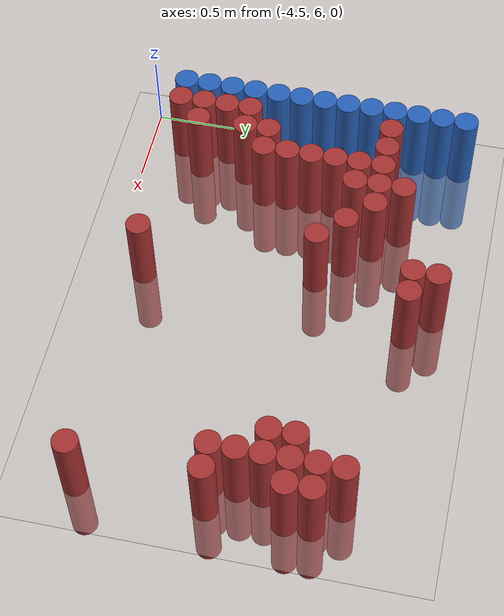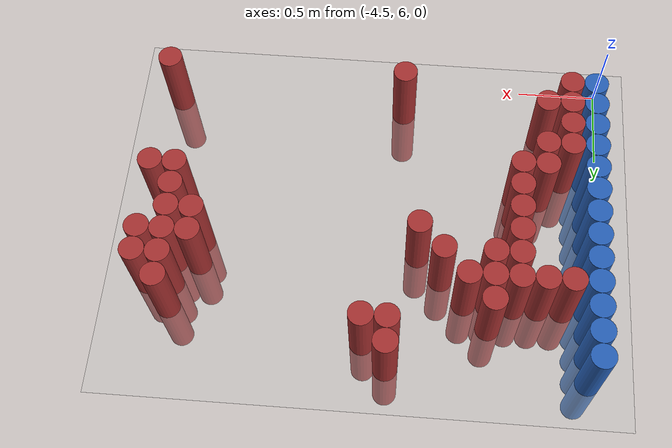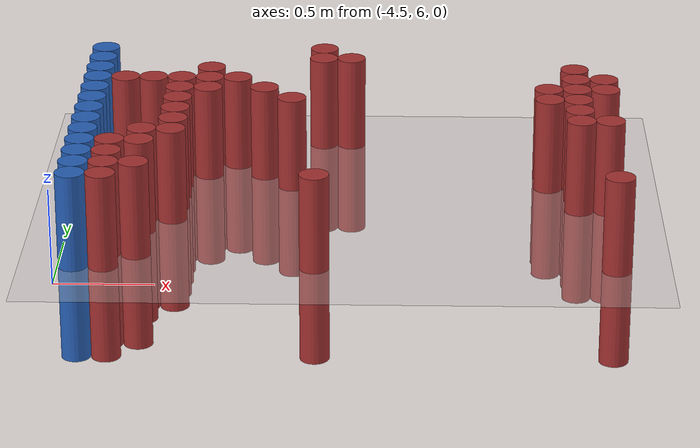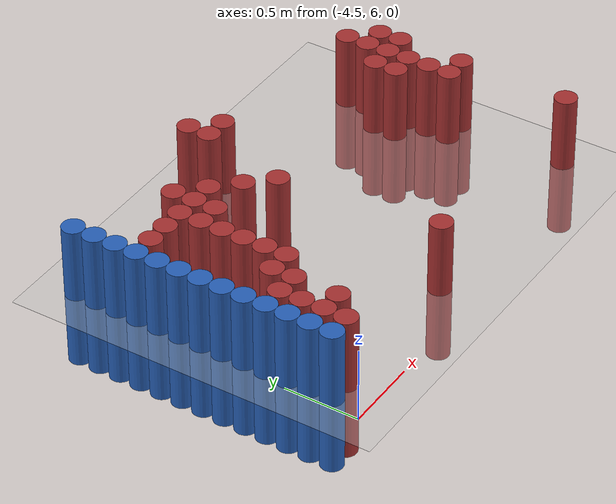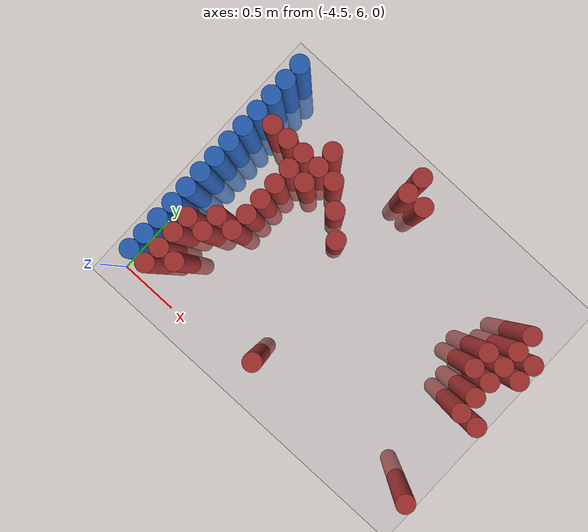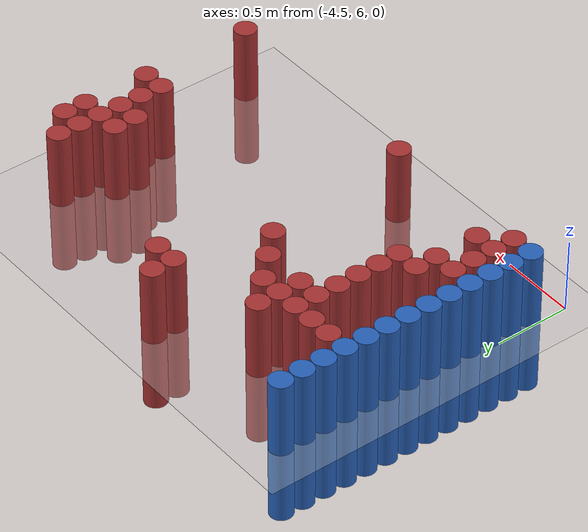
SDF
<sdf version="1.6">
 <world name="default">
  <model name="ground_plane">
   <static>1</static>
   <link name="link">
    <collision name="collision">
     <geometry><plane><normal>0 0 1</normal><size>100 100</size></plane></geometry>
     <surface><friction><ode><mu>100</mu><mu2>50</mu2></ode></friction></surface>
    </collision>
    <visual name="visual">
     <cast_shadows>0</cast_shadows>
     <geometry><plane><normal>0 0 1</normal><size>100 100</size></plane></geometry>
     <material>
      <script><uri>file://media/materials/scripts/gazebo.material</uri><name>Gazebo/Grey</name></script>
     </material>
    </visual>
   </link>
  </model>
  <model name="unit_cylinder_103">
   <static>1</static>
   <pose>-4.425000 6.225000 0.000000 0.000000 0.000000 0.000000</pose>
   <link name="link">
    <inertial>
     <mass>1</mass>
     <inertia><ixx>0.145833</ixx><ixy>0</ixy><ixz>0</ixz><iyy>0.145833</iyy><iyz>0</iyz><izz>0.125</izz></inertia>
    </inertial>
    <collision name="collision">
     <geometry><cylinder><radius>0.075000</radius><length>1</length></cylinder></geometry>
    </collision>
    <visual name="visual">
     <geometry><cylinder><radius>0.075000</radius><length>1</length></cylinder></geometry>
     <material>
      <ambient>0.152000 0.379000 0.720000 1</ambient>
      <diffuse>0.152000 0.379000 0.720000 1</diffuse>
     </material>
     <material>
      <script><name>Gazebo/Grey</name><uri>file://media/materials/scripts/gazebo.material</uri></script>
     </material>
    </visual>
   </link>
  </model>
  <model name="unit_cylinder_104">
   <static>1</static>
   <pose>-4.425000 6.375000 0.000000 0.000000 0.000000 0.000000</pose>
   <link name="link">
    <inertial>
     <mass>1</mass>
     <inertia><ixx>0.145833</ixx><ixy>0</ixy><ixz>0</ixz><iyy>0.145833</iyy><iyz>0</iyz><izz>0.125</izz></inertia>
    </inertial>
    <collision name="collision">
     <geometry><cylinder><radius>0.075000</radius><length>1</length></cylinder></geometry>
    </collision>
    <visual name="visual">
     <geometry><cylinder><radius>0.075000</radius><length>1</length></cylinder></geometry>
     <material>
      <ambient>0.152000 0.379000 0.720000 1</ambient>
      <diffuse>0.152000 0.379000 0.720000 1</diffuse>
     </material>
     <material>
      <script><name>Gazebo/Grey</name><uri>file://media/materials/scripts/gazebo.material</uri></script>
     </material>
    </visual>
   </link>
  </model>
  <model name="unit_cylinder_105">
   <static>1</static>
   <pose>-4.425000 6.525000 0.000000 0.000000 0.000000 0.000000</pose>
   <link name="link">
    <inertial>
     <mass>1</mass>
     <inertia><ixx>0.145833</ixx><ixy>0</ixy><ixz>0</ixz><iyy>0.145833</iyy><iyz>0</iyz><izz>0.125</izz></inertia>
    </inertial>
    <collision name="collision">
     <geometry><cylinder><radius>0.075000</radius><length>1</length></cylinder></geometry>
    </collision>
    <visual name="visual">
     <geometry><cylinder><radius>0.075000</radius><length>1</length></cylinder></geometry>
     <material>
      <ambient>0.152000 0.379000 0.720000 1</ambient>
      <diffuse>0.152000 0.379000 0.720000 1</diffuse>
     </material>
     <material>
      <script><name>Gazebo/Grey</name><uri>file://media/materials/scripts/gazebo.material</uri></script>
     </material>
    </visual>
   </link>
  </model>
  <model name="unit_cylinder_106">
   <static>1</static>
   <pose>-4.425000 6.675000 0.000000 0.000000 0.000000 0.000000</pose>
   <link name="link">
    <inertial>
     <mass>1</mass>
     <inertia><ixx>0.145833</ixx><ixy>0</ixy><ixz>0</ixz><iyy>0.145833</iyy><iyz>0</iyz><izz>0.125</izz></inertia>
    </inertial>
    <collision name="collision">
     <geometry><cylinder><radius>0.075000</radius><length>1</length></cylinder></geometry>
    </collision>
    <visual name="visual">
     <geometry><cylinder><radius>0.075000</radius><length>1</length></cylinder></geometry>
     <material>
      <ambient>0.152000 0.379000 0.720000 1</ambient>
      <diffuse>0.152000 0.379000 0.720000 1</diffuse>
     </material>
     <material>
      <script><name>Gazebo/Grey</name><uri>file://media/materials/scripts/gazebo.material</uri></script>
     </material>
    </visual>
   </link>
  </model>
  <model name="unit_cylinder_107">
   <static>1</static>
   <pose>-4.425000 6.825000 0.000000 0.000000 0.000000 0.000000</pose>
   <link name="link">
    <inertial>
     <mass>1</mass>
     <inertia><ixx>0.145833</ixx><ixy>0</ixy><ixz>0</ixz><iyy>0.145833</iyy><iyz>0</iyz><izz>0.125</izz></inertia>
    </inertial>
    <collision name="collision">
     <geometry><cylinder><radius>0.075000</radius><length>1</length></cylinder></geometry>
    </collision>
    <visual name="visual">
     <geometry><cylinder><radius>0.075000</radius><length>1</length></cylinder></geometry>
     <material>
      <ambient>0.152000 0.379000 0.720000 1</ambient>
      <diffuse>0.152000 0.379000 0.720000 1</diffuse>
     </material>
     <material>
      <script><name>Gazebo/Grey</name><uri>file://media/materials/scripts/gazebo.material</uri></script>
     </material>
    </visual>
   </link>
  </model>
  <model name="unit_cylinder_108">
   <static>1</static>
   <pose>-4.425000 6.975000 0.000000 0.000000 0.000000 0.000000</pose>
   <link name="link">
    <inertial>
     <mass>1</mass>
     <inertia><ixx>0.145833</ixx><ixy>0</ixy><ixz>0</ixz><iyy>0.145833</iyy><iyz>0</iyz><izz>0.125</izz></inertia>
    </inertial>
    <collision name="collision">
     <geometry><cylinder><radius>0.075000</radius><length>1</length></cylinder></geometry>
    </collision>
    <visual name="visual">
     <geometry><cylinder><radius>0.075000</radius><length>1</length></cylinder></geometry>
     <material>
      <ambient>0.152000 0.379000 0.720000 1</ambient>
      <diffuse>0.152000 0.379000 0.720000 1</diffuse>
     </material>
     <material>
      <script><name>Gazebo/Grey</name><uri>file://media/materials/scripts/gazebo.material</uri></script>
     </material>
    </visual>
   </link>
  </model>
  <model name="unit_cylinder_109">
   <static>1</static>
   <pose>-4.425000 7.125000 0.000000 0.000000 0.000000 0.000000</pose>
   <link name="link">
    <inertial>
     <mass>1</mass>
     <inertia><ixx>0.145833</ixx><ixy>0</ixy><ixz>0</ixz><iyy>0.145833</iyy><iyz>0</iyz><izz>0.125</izz></inertia>
    </inertial>
    <collision name="collision">
     <geometry><cylinder><radius>0.075000</radius><length>1</length></cylinder></geometry>
    </collision>
    <visual name="visual">
     <geometry><cylinder><radius>0.075000</radius><length>1</length></cylinder></geometry>
     <material>
      <ambient>0.152000 0.379000 0.720000 1</ambient>
      <diffuse>0.152000 0.379000 0.720000 1</diffuse>
     </material>
     <material>
      <script><name>Gazebo/Grey</name><uri>file://media/materials/scripts/gazebo.material</uri></script>
     </material>
    </visual>
   </link>
  </model>
  <model name="unit_cylinder_110">
   <static>1</static>
   <pose>-4.425000 7.275000 0.000000 0.000000 0.000000 0.000000</pose>
   <link name="link">
    <inertial>
     <mass>1</mass>
     <inertia><ixx>0.145833</ixx><ixy>0</ixy><ixz>0</ixz><iyy>0.145833</iyy><iyz>0</iyz><izz>0.125</izz></inertia>
    </inertial>
    <collision name="collision">
     <geometry><cylinder><radius>0.075000</radius><length>1</length></cylinder></geometry>
    </collision>
    <visual name="visual">
     <geometry><cylinder><radius>0.075000</radius><length>1</length></cylinder></geometry>
     <material>
      <ambient>0.152000 0.379000 0.720000 1</ambient>
      <diffuse>0.152000 0.379000 0.720000 1</diffuse>
     </material>
     <material>
      <script><name>Gazebo/Grey</name><uri>file://media/materials/scripts/gazebo.material</uri></script>
     </material>
    </visual>
   </link>
  </model>
  <model name="unit_cylinder_111">
   <static>1</static>
   <pose>-4.425000 7.425000 0.000000 0.000000 0.000000 0.000000</pose>
   <link name="link">
    <inertial>
     <mass>1</mass>
     <inertia><ixx>0.145833</ixx><ixy>0</ixy><ixz>0</ixz><iyy>0.145833</iyy><iyz>0</iyz><izz>0.125</izz></inertia>
    </inertial>
    <collision name="collision">
     <geometry><cylinder><radius>0.075000</radius><length>1</length></cylinder></geometry>
    </collision>
    <visual name="visual">
     <geometry><cylinder><radius>0.075000</radius><length>1</length></cylinder></geometry>
     <material>
      <ambient>0.152000 0.379000 0.720000 1</ambient>
      <diffuse>0.152000 0.379000 0.720000 1</diffuse>
     </material>
     <material>
      <script><name>Gazebo/Grey</name><uri>file://media/materials/scripts/gazebo.material</uri></script>
     </material>
    </visual>
   </link>
  </model>
  <model name="unit_cylinder_112">
   <static>1</static>
   <pose>-4.425000 7.575000 0.000000 0.000000 0.000000 0.000000</pose>
   <link name="link">
    <inertial>
     <mass>1</mass>
     <inertia><ixx>0.145833</ixx><ixy>0</ixy><ixz>0</ixz><iyy>0.145833</iyy><iyz>0</iyz><izz>0.125</izz></inertia>
    </inertial>
    <collision name="collision">
     <geometry><cylinder><radius>0.075000</radius><length>1</length></cylinder></geometry>
    </collision>
    <visual name="visual">
     <geometry><cylinder><radius>0.075000</radius><length>1</length></cylinder></geometry>
     <material>
      <ambient>0.152000 0.379000 0.720000 1</ambient>
      <diffuse>0.152000 0.379000 0.720000 1</diffuse>
     </material>
     <material>
      <script><name>Gazebo/Grey</name><uri>file://media/materials/scripts/gazebo.material</uri></script>
     </material>
    </visual>
   </link>
  </model>
  <model name="unit_cylinder_113">
   <static>1</static>
   <pose>-4.425000 7.725000 0.000000 0.000000 0.000000 0.000000</pose>
   <link name="link">
    <inertial>
     <mass>1</mass>
     <inertia><ixx>0.145833</ixx><ixy>0</ixy><ixz>0</ixz><iyy>0.145833</iyy><iyz>0</iyz><izz>0.125</izz></inertia>
    </inertial>
    <collision name="collision">
     <geometry><cylinder><radius>0.075000</radius><length>1</length></cylinder></geometry>
    </collision>
    <visual name="visual">
     <geometry><cylinder><radius>0.075000</radius><length>1</length></cylinder></geometry>
     <material>
      <ambient>0.152000 0.379000 0.720000 1</ambient>
      <diffuse>0.152000 0.379000 0.720000 1</diffuse>
     </material>
     <material>
      <script><name>Gazebo/Grey</name><uri>file://media/materials/scripts/gazebo.material</uri></script>
     </material>
    </visual>
   </link>
  </model>
  <model name="unit_cylinder_114">
   <static>1</static>
   <pose>-4.425000 7.875000 0.000000 0.000000 0.000000 0.000000</pose>
   <link name="link">
    <inertial>
     <mass>1</mass>
     <inertia><ixx>0.145833</ixx><ixy>0</ixy><ixz>0</ixz><iyy>0.145833</iyy><iyz>0</iyz><izz>0.125</izz></inertia>
    </inertial>
    <collision name="collision">
     <geometry><cylinder><radius>0.075000</radius><length>1</length></cylinder></geometry>
    </collision>
    <visual name="visual">
     <geometry><cylinder><radius>0.075000</radius><length>1</length></cylinder></geometry>
     <material>
      <ambient>0.152000 0.379000 0.720000 1</ambient>
      <diffuse>0.152000 0.379000 0.720000 1</diffuse>
     </material>
     <material>
      <script><name>Gazebo/Grey</name><uri>file://media/materials/scripts/gazebo.material</uri></script>
     </material>
    </visual>
   </link>
  </model>
  <model name="unit_cylinder_115">
   <static>1</static>
   <pose>-4.425000 8.025000 0.000000 0.000000 0.000000 0.000000</pose>
   <link name="link">
    <inertial>
     <mass>1</mass>
     <inertia><ixx>0.145833</ixx><ixy>0</ixy><ixz>0</ixz><iyy>0.145833</iyy><iyz>0</iyz><izz>0.125</izz></inertia>
    </inertial>
    <collision name="collision">
     <geometry><cylinder><radius>0.075000</radius><length>1</length></cylinder></geometry>
    </collision>
    <visual name="visual">
     <geometry><cylinder><radius>0.075000</radius><length>1</length></cylinder></geometry>
     <material>
      <ambient>0.152000 0.379000 0.720000 1</ambient>
      <diffuse>0.152000 0.379000 0.720000 1</diffuse>
     </material>
     <material>
      <script><name>Gazebo/Grey</name><uri>file://media/materials/scripts/gazebo.material</uri></script>
     </material>
    </visual>
   </link>
  </model>
  <model name="unit_cylinder_131">
   <static>1</static>
   <pose>-4.275000 6.225000 0.000000 0.000000 0.000000 0.000000</pose>
   <link name="link">
    <inertial>
     <mass>1</mass>
     <inertia><ixx>0.145833</ixx><ixy>0</ixy><ixz>0</ixz><iyy>0.145833</iyy><iyz>0</iyz><izz>0.125</izz></inertia>
    </inertial>
    <collision name="collision">
     <geometry><cylinder><radius>0.075000</radius><length>1</length></cylinder></geometry>
    </collision>
    <visual name="visual">
     <geometry><cylinder><radius>0.075000</radius><length>1</length></cylinder></geometry>
     <material>
      <ambient>0.648000 0.192000 0.192000 1</ambient>
      <diffuse>0.648000 0.192000 0.192000 1</diffuse>
     </material>
     <material>
      <script><name>Gazebo/Grey</name><uri>file://media/materials/scripts/gazebo.material</uri></script>
     </material>
    </visual>
   </link>
  </model>
  <model name="unit_cylinder_132">
   <static>1</static>
   <pose>-4.275000 6.375000 0.000000 0.000000 0.000000 0.000000</pose>
   <link name="link">
    <inertial>
     <mass>1</mass>
     <inertia><ixx>0.145833</ixx><ixy>0</ixy><ixz>0</ixz><iyy>0.145833</iyy><iyz>0</iyz><izz>0.125</izz></inertia>
    </inertial>
    <collision name="collision">
     <geometry><cylinder><radius>0.075000</radius><length>1</length></cylinder></geometry>
    </collision>
    <visual name="visual">
     <geometry><cylinder><radius>0.075000</radius><length>1</length></cylinder></geometry>
     <material>
      <ambient>0.648000 0.192000 0.192000 1</ambient>
      <diffuse>0.648000 0.192000 0.192000 1</diffuse>
     </material>
     <material>
      <script><name>Gazebo/Grey</name><uri>file://media/materials/scripts/gazebo.material</uri></script>
     </material>
    </visual>
   </link>
  </model>
  <model name="unit_cylinder_133">
   <static>1</static>
   <pose>-4.275000 6.525000 0.000000 0.000000 0.000000 0.000000</pose>
   <link name="link">
    <inertial>
     <mass>1</mass>
     <inertia><ixx>0.145833</ixx><ixy>0</ixy><ixz>0</ixz><iyy>0.145833</iyy><iyz>0</iyz><izz>0.125</izz></inertia>
    </inertial>
    <collision name="collision">
     <geometry><cylinder><radius>0.075000</radius><length>1</length></cylinder></geometry>
    </collision>
    <visual name="visual">
     <geometry><cylinder><radius>0.075000</radius><length>1</length></cylinder></geometry>
     <material>
      <ambient>0.648000 0.192000 0.192000 1</ambient>
      <diffuse>0.648000 0.192000 0.192000 1</diffuse>
     </material>
     <material>
      <script><name>Gazebo/Grey</name><uri>file://media/materials/scripts/gazebo.material</uri></script>
     </material>
    </visual>
   </link>
  </model>
  <model name="unit_cylinder_134">
   <static>1</static>
   <pose>-4.275000 6.675000 0.000000 0.000000 0.000000 0.000000</pose>
   <link name="link">
    <inertial>
     <mass>1</mass>
     <inertia><ixx>0.145833</ixx><ixy>0</ixy><ixz>0</ixz><iyy>0.145833</iyy><iyz>0</iyz><izz>0.125</izz></inertia>
    </inertial>
    <collision name="collision">
     <geometry><cylinder><radius>0.075000</radius><length>1</length></cylinder></geometry>
    </collision>
    <visual name="visual">
     <geometry><cylinder><radius>0.075000</radius><length>1</length></cylinder></geometry>
     <material>
      <ambient>0.648000 0.192000 0.192000 1</ambient>
      <diffuse>0.648000 0.192000 0.192000 1</diffuse>
     </material>
     <material>
      <script><name>Gazebo/Grey</name><uri>file://media/materials/scripts/gazebo.material</uri></script>
     </material>
    </visual>
   </link>
  </model>
  <model name="unit_cylinder_135">
   <static>1</static>
   <pose>-4.275000 7.575000 0.000000 0.000000 0.000000 0.000000</pose>
   <link name="link">
    <inertial>
     <mass>1</mass>
     <inertia><ixx>0.145833</ixx><ixy>0</ixy><ixz>0</ixz><iyy>0.145833</iyy><iyz>0</iyz><izz>0.125</izz></inertia>
    </inertial>
    <collision name="collision">
     <geometry><cylinder><radius>0.075000</radius><length>1</length></cylinder></geometry>
    </collision>
    <visual name="visual">
     <geometry><cylinder><radius>0.075000</radius><length>1</length></cylinder></geometry>
     <material>
      <ambient>0.648000 0.192000 0.192000 1</ambient>
      <diffuse>0.648000 0.192000 0.192000 1</diffuse>
     </material>
     <material>
      <script><name>Gazebo/Grey</name><uri>file://media/materials/scripts/gazebo.material</uri></script>
     </material>
    </visual>
   </link>
  </model>
  <model name="unit_cylinder_138">
   <static>1</static>
   <pose>-4.125000 6.375000 0.000000 0.000000 0.000000 0.000000</pose>
   <link name="link">
    <inertial>
     <mass>1</mass>
     <inertia><ixx>0.145833</ixx><ixy>0</ixy><ixz>0</ixz><iyy>0.145833</iyy><iyz>0</iyz><izz>0.125</izz></inertia>
    </inertial>
    <collision name="collision">
     <geometry><cylinder><radius>0.075000</radius><length>1</length></cylinder></geometry>
    </collision>
    <visual name="visual">
     <geometry><cylinder><radius>0.075000</radius><length>1</length></cylinder></geometry>
     <material>
      <ambient>0.648000 0.192000 0.192000 1</ambient>
      <diffuse>0.648000 0.192000 0.192000 1</diffuse>
     </material>
     <material>
      <script><name>Gazebo/Grey</name><uri>file://media/materials/scripts/gazebo.material</uri></script>
     </material>
    </visual>
   </link>
  </model>
  <model name="unit_cylinder_139">
   <static>1</static>
   <pose>-4.125000 6.675000 0.000000 0.000000 0.000000 0.000000</pose>
   <link name="link">
    <inertial>
     <mass>1</mass>
     <inertia><ixx>0.145833</ixx><ixy>0</ixy><ixz>0</ixz><iyy>0.145833</iyy><iyz>0</iyz><izz>0.125</izz></inertia>
    </inertial>
    <collision name="collision">
     <geometry><cylinder><radius>0.075000</radius><length>1</length></cylinder></geometry>
    </collision>
    <visual name="visual">
     <geometry><cylinder><radius>0.075000</radius><length>1</length></cylinder></geometry>
     <material>
      <ambient>0.648000 0.192000 0.192000 1</ambient>
      <diffuse>0.648000 0.192000 0.192000 1</diffuse>
     </material>
     <material>
      <script><name>Gazebo/Grey</name><uri>file://media/materials/scripts/gazebo.material</uri></script>
     </material>
    </visual>
   </link>
  </model>
  <model name="unit_cylinder_140">
   <static>1</static>
   <pose>-4.125000 6.825000 0.000000 0.000000 0.000000 0.000000</pose>
   <link name="link">
    <inertial>
     <mass>1</mass>
     <inertia><ixx>0.145833</ixx><ixy>0</ixy><ixz>0</ixz><iyy>0.145833</iyy><iyz>0</iyz><izz>0.125</izz></inertia>
    </inertial>
    <collision name="collision">
     <geometry><cylinder><radius>0.075000</radius><length>1</length></cylinder></geometry>
    </collision>
    <visual name="visual">
     <geometry><cylinder><radius>0.075000</radius><length>1</length></cylinder></geometry>
     <material>
      <ambient>0.648000 0.192000 0.192000 1</ambient>
      <diffuse>0.648000 0.192000 0.192000 1</diffuse>
     </material>
     <material>
      <script><name>Gazebo/Grey</name><uri>file://media/materials/scripts/gazebo.material</uri></script>
     </material>
    </visual>
   </link>
  </model>
  <model name="unit_cylinder_141">
   <static>1</static>
   <pose>-4.125000 7.575000 0.000000 0.000000 0.000000 0.000000</pose>
   <link name="link">
    <inertial>
     <mass>1</mass>
     <inertia><ixx>0.145833</ixx><ixy>0</ixy><ixz>0</ixz><iyy>0.145833</iyy><iyz>0</iyz><izz>0.125</izz></inertia>
    </inertial>
    <collision name="collision">
     <geometry><cylinder><radius>0.075000</radius><length>1</length></cylinder></geometry>
    </collision>
    <visual name="visual">
     <geometry><cylinder><radius>0.075000</radius><length>1</length></cylinder></geometry>
     <material>
      <ambient>0.648000 0.192000 0.192000 1</ambient>
      <diffuse>0.648000 0.192000 0.192000 1</diffuse>
     </material>
     <material>
      <script><name>Gazebo/Grey</name><uri>file://media/materials/scripts/gazebo.material</uri></script>
     </material>
    </visual>
   </link>
  </model>
  <model name="unit_cylinder_145">
   <static>1</static>
   <pose>-3.975000 6.825000 0.000000 0.000000 0.000000 0.000000</pose>
   <link name="link">
    <inertial>
     <mass>1</mass>
     <inertia><ixx>0.145833</ixx><ixy>0</ixy><ixz>0</ixz><iyy>0.145833</iyy><iyz>0</iyz><izz>0.125</izz></inertia>
    </inertial>
    <collision name="collision">
     <geometry><cylinder><radius>0.075000</radius><length>1</length></cylinder></geometry>
    </collision>
    <visual name="visual">
     <geometry><cylinder><radius>0.075000</radius><length>1</length></cylinder></geometry>
     <material>
      <ambient>0.648000 0.192000 0.192000 1</ambient>
      <diffuse>0.648000 0.192000 0.192000 1</diffuse>
     </material>
     <material>
      <script><name>Gazebo/Grey</name><uri>file://media/materials/scripts/gazebo.material</uri></script>
     </material>
    </visual>
   </link>
  </model>
  <model name="unit_cylinder_146">
   <static>1</static>
   <pose>-3.975000 6.975000 0.000000 0.000000 0.000000 0.000000</pose>
   <link name="link">
    <inertial>
     <mass>1</mass>
     <inertia><ixx>0.145833</ixx><ixy>0</ixy><ixz>0</ixz><iyy>0.145833</iyy><iyz>0</iyz><izz>0.125</izz></inertia>
    </inertial>
    <collision name="collision">
     <geometry><cylinder><radius>0.075000</radius><length>1</length></cylinder></geometry>
    </collision>
    <visual name="visual">
     <geometry><cylinder><radius>0.075000</radius><length>1</length></cylinder></geometry>
     <material>
      <ambient>0.648000 0.192000 0.192000 1</ambient>
      <diffuse>0.648000 0.192000 0.192000 1</diffuse>
     </material>
     <material>
      <script><name>Gazebo/Grey</name><uri>file://media/materials/scripts/gazebo.material</uri></script>
     </material>
    </visual>
   </link>
  </model>
  <model name="unit_cylinder_147">
   <static>1</static>
   <pose>-3.975000 7.125000 0.000000 0.000000 0.000000 0.000000</pose>
   <link name="link">
    <inertial>
     <mass>1</mass>
     <inertia><ixx>0.145833</ixx><ixy>0</ixy><ixz>0</ixz><iyy>0.145833</iyy><iyz>0</iyz><izz>0.125</izz></inertia>
    </inertial>
    <collision name="collision">
     <geometry><cylinder><radius>0.075000</radius><length>1</length></cylinder></geometry>
    </collision>
    <visual name="visual">
     <geometry><cylinder><radius>0.075000</radius><length>1</length></cylinder></geometry>
     <material>
      <ambient>0.648000 0.192000 0.192000 1</ambient>
      <diffuse>0.648000 0.192000 0.192000 1</diffuse>
     </material>
     <material>
      <script><name>Gazebo/Grey</name><uri>file://media/materials/scripts/gazebo.material</uri></script>
     </material>
    </visual>
   </link>
  </model>
  <model name="unit_cylinder_148">
   <static>1</static>
   <pose>-3.975000 7.275000 0.000000 0.000000 0.000000 0.000000</pose>
   <link name="link">
    <inertial>
     <mass>1</mass>
     <inertia><ixx>0.145833</ixx><ixy>0</ixy><ixz>0</ixz><iyy>0.145833</iyy><iyz>0</iyz><izz>0.125</izz></inertia>
    </inertial>
    <collision name="collision">
     <geometry><cylinder><radius>0.075000</radius><length>1</length></cylinder></geometry>
    </collision>
    <visual name="visual">
     <geometry><cylinder><radius>0.075000</radius><length>1</length></cylinder></geometry>
     <material>
      <ambient>0.648000 0.192000 0.192000 1</ambient>
      <diffuse>0.648000 0.192000 0.192000 1</diffuse>
     </material>
     <material>
      <script><name>Gazebo/Grey</name><uri>file://media/materials/scripts/gazebo.material</uri></script>
     </material>
    </visual>
   </link>
  </model>
  <model name="unit_cylinder_149">
   <static>1</static>
   <pose>-3.975000 7.425000 0.000000 0.000000 0.000000 0.000000</pose>
   <link name="link">
    <inertial>
     <mass>1</mass>
     <inertia><ixx>0.145833</ixx><ixy>0</ixy><ixz>0</ixz><iyy>0.145833</iyy><iyz>0</iyz><izz>0.125</izz></inertia>
    </inertial>
    <collision name="collision">
     <geometry><cylinder><radius>0.075000</radius><length>1</length></cylinder></geometry>
    </collision>
    <visual name="visual">
     <geometry><cylinder><radius>0.075000</radius><length>1</length></cylinder></geometry>
     <material>
      <ambient>0.648000 0.192000 0.192000 1</ambient>
      <diffuse>0.648000 0.192000 0.192000 1</diffuse>
     </material>
     <material>
      <script><name>Gazebo/Grey</name><uri>file://media/materials/scripts/gazebo.material</uri></script>
     </material>
    </visual>
   </link>
  </model>
  <model name="unit_cylinder_150">
   <static>1</static>
   <pose>-3.975000 7.575000 0.000000 0.000000 0.000000 0.000000</pose>
   <link name="link">
    <inertial>
     <mass>1</mass>
     <inertia><ixx>0.145833</ixx><ixy>0</ixy><ixz>0</ixz><iyy>0.145833</iyy><iyz>0</iyz><izz>0.125</izz></inertia>
    </inertial>
    <collision name="collision">
     <geometry><cylinder><radius>0.075000</radius><length>1</length></cylinder></geometry>
    </collision>
    <visual name="visual">
     <geometry><cylinder><radius>0.075000</radius><length>1</length></cylinder></geometry>
     <material>
      <ambient>0.648000 0.192000 0.192000 1</ambient>
      <diffuse>0.648000 0.192000 0.192000 1</diffuse>
     </material>
     <material>
      <script><name>Gazebo/Grey</name><uri>file://media/materials/scripts/gazebo.material</uri></script>
     </material>
    </visual>
   </link>
  </model>
  <model name="unit_cylinder_159">
   <static>1</static>
   <pose>-3.825000 7.425000 0.000000 0.000000 0.000000 0.000000</pose>
   <link name="link">
    <inertial>
     <mass>1</mass>
     <inertia><ixx>0.145833</ixx><ixy>0</ixy><ixz>0</ixz><iyy>0.145833</iyy><iyz>0</iyz><izz>0.125</izz></inertia>
    </inertial>
    <collision name="collision">
     <geometry><cylinder><radius>0.075000</radius><length>1</length></cylinder></geometry>
    </collision>
    <visual name="visual">
     <geometry><cylinder><radius>0.075000</radius><length>1</length></cylinder></geometry>
     <material>
      <ambient>0.648000 0.192000 0.192000 1</ambient>
      <diffuse>0.648000 0.192000 0.192000 1</diffuse>
     </material>
     <material>
      <script><name>Gazebo/Grey</name><uri>file://media/materials/scripts/gazebo.material</uri></script>
     </material>
    </visual>
   </link>
  </model>
  <model name="unit_cylinder_160">
   <static>1</static>
   <pose>-3.825000 7.575000 0.000000 0.000000 0.000000 0.000000</pose>
   <link name="link">
    <inertial>
     <mass>1</mass>
     <inertia><ixx>0.145833</ixx><ixy>0</ixy><ixz>0</ixz><iyy>0.145833</iyy><iyz>0</iyz><izz>0.125</izz></inertia>
    </inertial>
    <collision name="collision">
     <geometry><cylinder><radius>0.075000</radius><length>1</length></cylinder></geometry>
    </collision>
    <visual name="visual">
     <geometry><cylinder><radius>0.075000</radius><length>1</length></cylinder></geometry>
     <material>
      <ambient>0.648000 0.192000 0.192000 1</ambient>
      <diffuse>0.648000 0.192000 0.192000 1</diffuse>
     </material>
     <material>
      <script><name>Gazebo/Grey</name><uri>file://media/materials/scripts/gazebo.material</uri></script>
     </material>
    </visual>
   </link>
  </model>
  <model name="unit_cylinder_161">
   <static>1</static>
   <pose>-3.825000 7.725000 0.000000 0.000000 0.000000 0.000000</pose>
   <link name="link">
    <inertial>
     <mass>1</mass>
     <inertia><ixx>0.145833</ixx><ixy>0</ixy><ixz>0</ixz><iyy>0.145833</iyy><iyz>0</iyz><izz>0.125</izz></inertia>
    </inertial>
    <collision name="collision">
     <geometry><cylinder><radius>0.075000</radius><length>1</length></cylinder></geometry>
    </collision>
    <visual name="visual">
     <geometry><cylinder><radius>0.075000</radius><length>1</length></cylinder></geometry>
     <material>
      <ambient>0.648000 0.192000 0.192000 1</ambient>
      <diffuse>0.648000 0.192000 0.192000 1</diffuse>
     </material>
     <material>
      <script><name>Gazebo/Grey</name><uri>file://media/materials/scripts/gazebo.material</uri></script>
     </material>
    </visual>
   </link>
  </model>
  <model name="unit_cylinder_170">
   <static>1</static>
   <pose>-3.675000 7.575000 0.000000 0.000000 0.000000 0.000000</pose>
   <link name="link">
    <inertial>
     <mass>1</mass>
     <inertia><ixx>0.145833</ixx><ixy>0</ixy><ixz>0</ixz><iyy>0.145833</iyy><iyz>0</iyz><izz>0.125</izz></inertia>
    </inertial>
    <collision name="collision">
     <geometry><cylinder><radius>0.075000</radius><length>1</length></cylinder></geometry>
    </collision>
    <visual name="visual">
     <geometry><cylinder><radius>0.075000</radius><length>1</length></cylinder></geometry>
     <material>
      <ambient>0.648000 0.192000 0.192000 1</ambient>
      <diffuse>0.648000 0.192000 0.192000 1</diffuse>
     </material>
     <material>
      <script><name>Gazebo/Grey</name><uri>file://media/materials/scripts/gazebo.material</uri></script>
     </material>
    </visual>
   </link>
  </model>
  <model name="unit_cylinder_175">
   <static>1</static>
   <pose>-3.525000 7.425000 0.000000 0.000000 0.000000 0.000000</pose>
   <link name="link">
    <inertial>
     <mass>1</mass>
     <inertia><ixx>0.145833</ixx><ixy>0</ixy><ixz>0</ixz><iyy>0.145833</iyy><iyz>0</iyz><izz>0.125</izz></inertia>
    </inertial>
    <collision name="collision">
     <geometry><cylinder><radius>0.075000</radius><length>1</length></cylinder></geometry>
    </collision>
    <visual name="visual">
     <geometry><cylinder><radius>0.075000</radius><length>1</length></cylinder></geometry>
     <material>
      <ambient>0.648000 0.192000 0.192000 1</ambient>
      <diffuse>0.648000 0.192000 0.192000 1</diffuse>
     </material>
     <material>
      <script><name>Gazebo/Grey</name><uri>file://media/materials/scripts/gazebo.material</uri></script>
     </material>
    </visual>
   </link>
  </model>
  <model name="unit_cylinder_179">
   <static>1</static>
   <pose>-3.375000 7.275000 0.000000 0.000000 0.000000 0.000000</pose>
   <link name="link">
    <inertial>
     <mass>1</mass>
     <inertia><ixx>0.145833</ixx><ixy>0</ixy><ixz>0</ixz><iyy>0.145833</iyy><iyz>0</iyz><izz>0.125</izz></inertia>
    </inertial>
    <collision name="collision">
     <geometry><cylinder><radius>0.075000</radius><length>1</length></cylinder></geometry>
    </collision>
    <visual name="visual">
     <geometry><cylinder><radius>0.075000</radius><length>1</length></cylinder></geometry>
     <material>
      <ambient>0.648000 0.192000 0.192000 1</ambient>
      <diffuse>0.648000 0.192000 0.192000 1</diffuse>
     </material>
     <material>
      <script><name>Gazebo/Grey</name><uri>file://media/materials/scripts/gazebo.material</uri></script>
     </material>
    </visual>
   </link>
  </model>
  <model name="unit_cylinder_184">
   <static>1</static>
   <pose>-3.225000 6.225000 0.000000 0.000000 0.000000 0.000000</pose>
   <link name="link">
    <inertial>
     <mass>1</mass>
     <inertia><ixx>0.145833</ixx><ixy>0</ixy><ixz>0</ixz><iyy>0.145833</iyy><iyz>0</iyz><izz>0.125</izz></inertia>
    </inertial>
    <collision name="collision">
     <geometry><cylinder><radius>0.075000</radius><length>1</length></cylinder></geometry>
    </collision>
    <visual name="visual">
     <geometry><cylinder><radius>0.075000</radius><length>1</length></cylinder></geometry>
     <material>
      <ambient>0.648000 0.192000 0.192000 1</ambient>
      <diffuse>0.648000 0.192000 0.192000 1</diffuse>
     </material>
     <material>
      <script><name>Gazebo/Grey</name><uri>file://media/materials/scripts/gazebo.material</uri></script>
     </material>
    </visual>
   </link>
  </model>
  <model name="unit_cylinder_185">
   <static>1</static>
   <pose>-3.225000 7.875000 0.000000 0.000000 0.000000 0.000000</pose>
   <link name="link">
    <inertial>
     <mass>1</mass>
     <inertia><ixx>0.145833</ixx><ixy>0</ixy><ixz>0</ixz><iyy>0.145833</iyy><iyz>0</iyz><izz>0.125</izz></inertia>
    </inertial>
    <collision name="collision">
     <geometry><cylinder><radius>0.075000</radius><length>1</length></cylinder></geometry>
    </collision>
    <visual name="visual">
     <geometry><cylinder><radius>0.075000</radius><length>1</length></cylinder></geometry>
     <material>
      <ambient>0.648000 0.192000 0.192000 1</ambient>
      <diffuse>0.648000 0.192000 0.192000 1</diffuse>
     </material>
     <material>
      <script><name>Gazebo/Grey</name><uri>file://media/materials/scripts/gazebo.material</uri></script>
     </material>
    </visual>
   </link>
  </model>
  <model name="unit_cylinder_186">
   <static>1</static>
   <pose>-3.225000 8.025000 0.000000 0.000000 0.000000 0.000000</pose>
   <link name="link">
    <inertial>
     <mass>1</mass>
     <inertia><ixx>0.145833</ixx><ixy>0</ixy><ixz>0</ixz><iyy>0.145833</iyy><iyz>0</iyz><izz>0.125</izz></inertia>
    </inertial>
    <collision name="collision">
     <geometry><cylinder><radius>0.075000</radius><length>1</length></cylinder></geometry>
    </collision>
    <visual name="visual">
     <geometry><cylinder><radius>0.075000</radius><length>1</length></cylinder></geometry>
     <material>
      <ambient>0.648000 0.192000 0.192000 1</ambient>
      <diffuse>0.648000 0.192000 0.192000 1</diffuse>
     </material>
     <material>
      <script><name>Gazebo/Grey</name><uri>file://media/materials/scripts/gazebo.material</uri></script>
     </material>
    </visual>
   </link>
  </model>
  <model name="unit_cylinder_194">
   <static>1</static>
   <pose>-3.075000 7.875000 0.000000 0.000000 0.000000 0.000000</pose>
   <link name="link">
    <inertial>
     <mass>1</mass>
     <inertia><ixx>0.145833</ixx><ixy>0</ixy><ixz>0</ixz><iyy>0.145833</iyy><iyz>0</iyz><izz>0.125</izz></inertia>
    </inertial>
    <collision name="collision">
     <geometry><cylinder><radius>0.075000</radius><length>1</length></cylinder></geometry>
    </collision>
    <visual name="visual">
     <geometry><cylinder><radius>0.075000</radius><length>1</length></cylinder></geometry>
     <material>
      <ambient>0.648000 0.192000 0.192000 1</ambient>
      <diffuse>0.648000 0.192000 0.192000 1</diffuse>
     </material>
     <material>
      <script><name>Gazebo/Grey</name><uri>file://media/materials/scripts/gazebo.material</uri></script>
     </material>
    </visual>
   </link>
  </model>
  <model name="unit_cylinder_206">
   <static>1</static>
   <pose>-2.025000 7.275000 0.000000 0.000000 0.000000 0.000000</pose>
   <link name="link">
    <inertial>
     <mass>1</mass>
     <inertia><ixx>0.145833</ixx><ixy>0</ixy><ixz>0</ixz><iyy>0.145833</iyy><iyz>0</iyz><izz>0.125</izz></inertia>
    </inertial>
    <collision name="collision">
     <geometry><cylinder><radius>0.075000</radius><length>1</length></cylinder></geometry>
    </collision>
    <visual name="visual">
     <geometry><cylinder><radius>0.075000</radius><length>1</length></cylinder></geometry>
     <material>
      <ambient>0.648000 0.192000 0.192000 1</ambient>
      <diffuse>0.648000 0.192000 0.192000 1</diffuse>
     </material>
     <material>
      <script><name>Gazebo/Grey</name><uri>file://media/materials/scripts/gazebo.material</uri></script>
     </material>
    </visual>
   </link>
  </model>
  <model name="unit_cylinder_207">
   <static>1</static>
   <pose>-2.025000 7.425000 0.000000 0.000000 0.000000 0.000000</pose>
   <link name="link">
    <inertial>
     <mass>1</mass>
     <inertia><ixx>0.145833</ixx><ixy>0</ixy><ixz>0</ixz><iyy>0.145833</iyy><iyz>0</iyz><izz>0.125</izz></inertia>
    </inertial>
    <collision name="collision">
     <geometry><cylinder><radius>0.075000</radius><length>1</length></cylinder></geometry>
    </collision>
    <visual name="visual">
     <geometry><cylinder><radius>0.075000</radius><length>1</length></cylinder></geometry>
     <material>
      <ambient>0.648000 0.192000 0.192000 1</ambient>
      <diffuse>0.648000 0.192000 0.192000 1</diffuse>
     </material>
     <material>
      <script><name>Gazebo/Grey</name><uri>file://media/materials/scripts/gazebo.material</uri></script>
     </material>
    </visual>
   </link>
  </model>
  <model name="unit_cylinder_210">
   <static>1</static>
   <pose>-1.875000 6.975000 0.000000 0.000000 0.000000 0.000000</pose>
   <link name="link">
    <inertial>
     <mass>1</mass>
     <inertia><ixx>0.145833</ixx><ixy>0</ixy><ixz>0</ixz><iyy>0.145833</iyy><iyz>0</iyz><izz>0.125</izz></inertia>
    </inertial>
    <collision name="collision">
     <geometry><cylinder><radius>0.075000</radius><length>1</length></cylinder></geometry>
    </collision>
    <visual name="visual">
     <geometry><cylinder><radius>0.075000</radius><length>1</length></cylinder></geometry>
     <material>
      <ambient>0.648000 0.192000 0.192000 1</ambient>
      <diffuse>0.648000 0.192000 0.192000 1</diffuse>
     </material>
     <material>
      <script><name>Gazebo/Grey</name><uri>file://media/materials/scripts/gazebo.material</uri></script>
     </material>
    </visual>
   </link>
  </model>
  <model name="unit_cylinder_211">
   <static>1</static>
   <pose>-1.875000 7.125000 0.000000 0.000000 0.000000 0.000000</pose>
   <link name="link">
    <inertial>
     <mass>1</mass>
     <inertia><ixx>0.145833</ixx><ixy>0</ixy><ixz>0</ixz><iyy>0.145833</iyy><iyz>0</iyz><izz>0.125</izz></inertia>
    </inertial>
    <collision name="collision">
     <geometry><cylinder><radius>0.075000</radius><length>1</length></cylinder></geometry>
    </collision>
    <visual name="visual">
     <geometry><cylinder><radius>0.075000</radius><length>1</length></cylinder></geometry>
     <material>
      <ambient>0.648000 0.192000 0.192000 1</ambient>
      <diffuse>0.648000 0.192000 0.192000 1</diffuse>
     </material>
     <material>
      <script><name>Gazebo/Grey</name><uri>file://media/materials/scripts/gazebo.material</uri></script>
     </material>
    </visual>
   </link>
  </model>
  <model name="unit_cylinder_212">
   <static>1</static>
   <pose>-1.875000 7.275000 0.000000 0.000000 0.000000 0.000000</pose>
   <link name="link">
    <inertial>
     <mass>1</mass>
     <inertia><ixx>0.145833</ixx><ixy>0</ixy><ixz>0</ixz><iyy>0.145833</iyy><iyz>0</iyz><izz>0.125</izz></inertia>
    </inertial>
    <collision name="collision">
     <geometry><cylinder><radius>0.075000</radius><length>1</length></cylinder></geometry>
    </collision>
    <visual name="visual">
     <geometry><cylinder><radius>0.075000</radius><length>1</length></cylinder></geometry>
     <material>
      <ambient>0.648000 0.192000 0.192000 1</ambient>
      <diffuse>0.648000 0.192000 0.192000 1</diffuse>
     </material>
     <material>
      <script><name>Gazebo/Grey</name><uri>file://media/materials/scripts/gazebo.material</uri></script>
     </material>
    </visual>
   </link>
  </model>
  <model name="unit_cylinder_213">
   <static>1</static>
   <pose>-1.875000 7.425000 0.000000 0.000000 0.000000 0.000000</pose>
   <link name="link">
    <inertial>
     <mass>1</mass>
     <inertia><ixx>0.145833</ixx><ixy>0</ixy><ixz>0</ixz><iyy>0.145833</iyy><iyz>0</iyz><izz>0.125</izz></inertia>
    </inertial>
    <collision name="collision">
     <geometry><cylinder><radius>0.075000</radius><length>1</length></cylinder></geometry>
    </collision>
    <visual name="visual">
     <geometry><cylinder><radius>0.075000</radius><length>1</length></cylinder></geometry>
     <material>
      <ambient>0.648000 0.192000 0.192000 1</ambient>
      <diffuse>0.648000 0.192000 0.192000 1</diffuse>
     </material>
     <material>
      <script><name>Gazebo/Grey</name><uri>file://media/materials/scripts/gazebo.material</uri></script>
     </material>
    </visual>
   </link>
  </model>
  <model name="unit_cylinder_214">
   <static>1</static>
   <pose>-1.875000 7.575000 0.000000 0.000000 0.000000 0.000000</pose>
   <link name="link">
    <inertial>
     <mass>1</mass>
     <inertia><ixx>0.145833</ixx><ixy>0</ixy><ixz>0</ixz><iyy>0.145833</iyy><iyz>0</iyz><izz>0.125</izz></inertia>
    </inertial>
    <collision name="collision">
     <geometry><cylinder><radius>0.075000</radius><length>1</length></cylinder></geometry>
    </collision>
    <visual name="visual">
     <geometry><cylinder><radius>0.075000</radius><length>1</length></cylinder></geometry>
     <material>
      <ambient>0.648000 0.192000 0.192000 1</ambient>
      <diffuse>0.648000 0.192000 0.192000 1</diffuse>
     </material>
     <material>
      <script><name>Gazebo/Grey</name><uri>file://media/materials/scripts/gazebo.material</uri></script>
     </material>
    </visual>
   </link>
  </model>
  <model name="unit_cylinder_215">
   <static>1</static>
   <pose>-1.875000 7.725000 0.000000 0.000000 0.000000 0.000000</pose>
   <link name="link">
    <inertial>
     <mass>1</mass>
     <inertia><ixx>0.145833</ixx><ixy>0</ixy><ixz>0</ixz><iyy>0.145833</iyy><iyz>0</iyz><izz>0.125</izz></inertia>
    </inertial>
    <collision name="collision">
     <geometry><cylinder><radius>0.075000</radius><length>1</length></cylinder></geometry>
    </collision>
    <visual name="visual">
     <geometry><cylinder><radius>0.075000</radius><length>1</length></cylinder></geometry>
     <material>
      <ambient>0.648000 0.192000 0.192000 1</ambient>
      <diffuse>0.648000 0.192000 0.192000 1</diffuse>
     </material>
     <material>
      <script><name>Gazebo/Grey</name><uri>file://media/materials/scripts/gazebo.material</uri></script>
     </material>
    </visual>
   </link>
  </model>
  <model name="unit_cylinder_221">
   <static>1</static>
   <pose>-1.725000 6.225000 0.000000 0.000000 0.000000 0.000000</pose>
   <link name="link">
    <inertial>
     <mass>1</mass>
     <inertia><ixx>0.145833</ixx><ixy>0</ixy><ixz>0</ixz><iyy>0.145833</iyy><iyz>0</iyz><izz>0.125</izz></inertia>
    </inertial>
    <collision name="collision">
     <geometry><cylinder><radius>0.075000</radius><length>1</length></cylinder></geometry>
    </collision>
    <visual name="visual">
     <geometry><cylinder><radius>0.075000</radius><length>1</length></cylinder></geometry>
     <material>
      <ambient>0.648000 0.192000 0.192000 1</ambient>
      <diffuse>0.648000 0.192000 0.192000 1</diffuse>
     </material>
     <material>
      <script><name>Gazebo/Grey</name><uri>file://media/materials/scripts/gazebo.material</uri></script>
     </material>
    </visual>
   </link>
  </model>
  <model name="unit_cylinder_222">
   <static>1</static>
   <pose>-1.725000 6.975000 0.000000 0.000000 0.000000 0.000000</pose>
   <link name="link">
    <inertial>
     <mass>1</mass>
     <inertia><ixx>0.145833</ixx><ixy>0</ixy><ixz>0</ixz><iyy>0.145833</iyy><iyz>0</iyz><izz>0.125</izz></inertia>
    </inertial>
    <collision name="collision">
     <geometry><cylinder><radius>0.075000</radius><length>1</length></cylinder></geometry>
    </collision>
    <visual name="visual">
     <geometry><cylinder><radius>0.075000</radius><length>1</length></cylinder></geometry>
     <material>
      <ambient>0.648000 0.192000 0.192000 1</ambient>
      <diffuse>0.648000 0.192000 0.192000 1</diffuse>
     </material>
     <material>
      <script><name>Gazebo/Grey</name><uri>file://media/materials/scripts/gazebo.material</uri></script>
     </material>
    </visual>
   </link>
  </model>
  <model name="unit_cylinder_223">
   <static>1</static>
   <pose>-1.725000 7.425000 0.000000 0.000000 0.000000 0.000000</pose>
   <link name="link">
    <inertial>
     <mass>1</mass>
     <inertia><ixx>0.145833</ixx><ixy>0</ixy><ixz>0</ixz><iyy>0.145833</iyy><iyz>0</iyz><izz>0.125</izz></inertia>
    </inertial>
    <collision name="collision">
     <geometry><cylinder><radius>0.075000</radius><length>1</length></cylinder></geometry>
    </collision>
    <visual name="visual">
     <geometry><cylinder><radius>0.075000</radius><length>1</length></cylinder></geometry>
     <material>
      <ambient>0.648000 0.192000 0.192000 1</ambient>
      <diffuse>0.648000 0.192000 0.192000 1</diffuse>
     </material>
     <material>
      <script><name>Gazebo/Grey</name><uri>file://media/materials/scripts/gazebo.material</uri></script>
     </material>
    </visual>
   </link>
  </model>
  <model name="unit_cylinder_224">
   <static>1</static>
   <pose>-1.725000 7.575000 0.000000 0.000000 0.000000 0.000000</pose>
   <link name="link">
    <inertial>
     <mass>1</mass>
     <inertia><ixx>0.145833</ixx><ixy>0</ixy><ixz>0</ixz><iyy>0.145833</iyy><iyz>0</iyz><izz>0.125</izz></inertia>
    </inertial>
    <collision name="collision">
     <geometry><cylinder><radius>0.075000</radius><length>1</length></cylinder></geometry>
    </collision>
    <visual name="visual">
     <geometry><cylinder><radius>0.075000</radius><length>1</length></cylinder></geometry>
     <material>
      <ambient>0.648000 0.192000 0.192000 1</ambient>
      <diffuse>0.648000 0.192000 0.192000 1</diffuse>
     </material>
     <material>
      <script><name>Gazebo/Grey</name><uri>file://media/materials/scripts/gazebo.material</uri></script>
     </material>
    </visual>
   </link>
  </model>
 </world>
</sdf>
